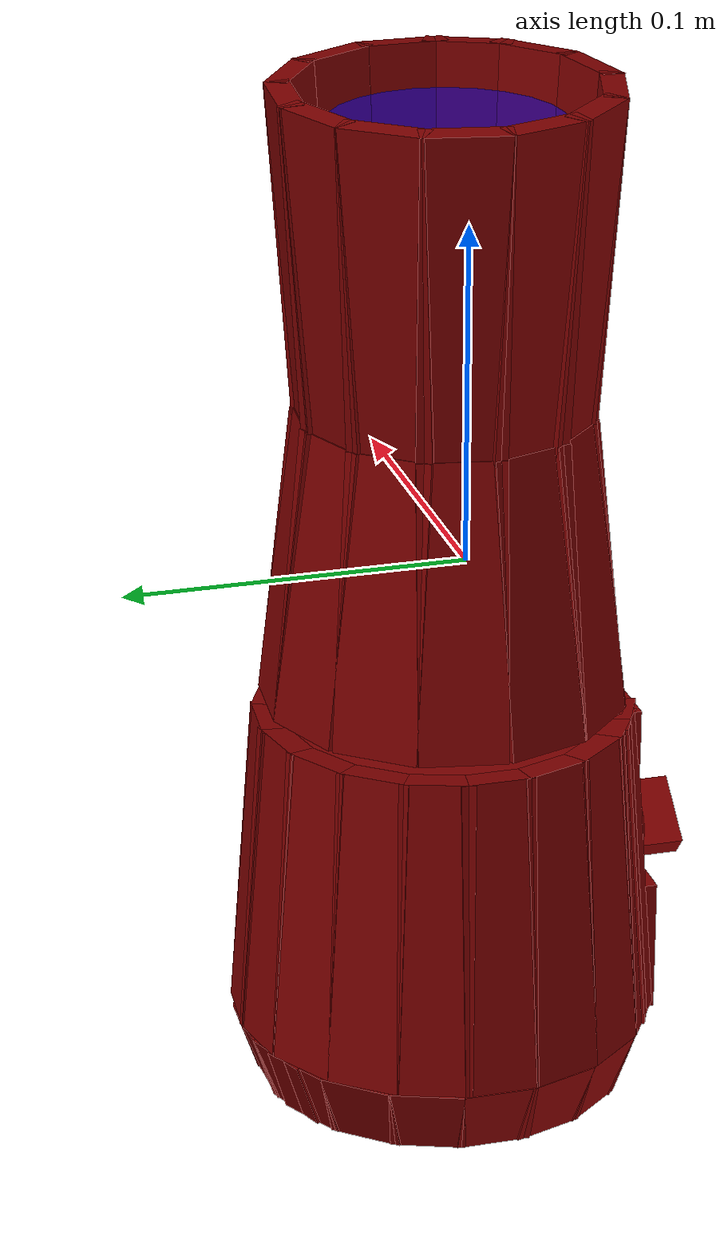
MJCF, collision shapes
<?xml version='1.0' encoding='UTF-8'?>
<mujoco model="model">
  <option timestep="0.002" gravity="0.0 0.0 -9.81"/>
  <compiler angle="radian"/>
  <asset>
    <mesh file="visuals/blade.obj" name="blade_vis"/>
    <mesh file="visuals/Body001.obj" name="Body001_vis"/>
    <mesh file="visuals/knob_speed.obj" name="knob_speed_vis"/>
    <mesh file="visuals/pitcher.obj" name="pitcher_vis"/>
    <mesh file="visuals/pitcher_main.obj" name="pitcher_main_vis"/>
    <mesh file="visuals/power_button.obj" name="power_button_vis"/>
    <texture file="visuals/T_BC001.png" name="Body001_material" type="2d"/>
    <material name="Body001_material" rgba="1 1 1 1.0" texture="Body001_material" shininess="0.4472135901451111" specular="0.3103448502657381"/>
    <texture file="visuals/T_BC001.png" name="knob_speed_material" type="2d"/>
    <material name="knob_speed_material" rgba="1 1 1 1.0" texture="knob_speed_material" shininess="0.4472135901451111" specular="0.3103448502657381"/>
    <texture file="visuals/T_BC001.png" name="pitcher_material" type="2d"/>
    <material name="pitcher_material" rgba="1 1 1 0.800000011920929" texture="pitcher_material" shininess="0.4472135901451111" specular="0.3103448502657381"/>
    <texture file="visuals/T_BC001.png" name="blade_material" type="2d"/>
    <material name="blade_material" rgba="1 1 1 1.0" texture="blade_material" shininess="0.4472135901451111" specular="0.3103448502657381"/>
    <texture file="visuals/T_BC001.png" name="pitcher_main_material" type="2d"/>
    <material name="pitcher_main_material" rgba="1 1 1 1.0" texture="pitcher_main_material" shininess="0.4472135901451111" specular="0.3103448502657381"/>
    <texture file="visuals/T_BC001.png" name="power_button_material" type="2d"/>
    <material name="power_button_material" rgba="1 1 1 1.0" texture="power_button_material" shininess="0.4472135901451111" specular="0.3103448502657381"/>
  </asset>
  <default>
    <default class="visual">
      <geom conaffinity="0" contype="0" group="1" type="mesh"/>
    </default>
    <default class="collision">
      <geom group="0" rgba="0.5 0 0 0.5" density="1.0" solref="0.004 1" solimp="0.998 0.998 0.001"/>
    </default>
    <default class="spawn">
      <geom group="0" rgba="1 1 1 0.5" contype="0" conaffinity="0"/>
      <site group="0" rgba="1 1 1 0.5"/>
    </default>
    <default class="region">
      <geom group="1" conaffinity="0" contype="0" rgba="0 1 0 0" mass="0"/>
    </default>
  </default>
  <worldbody>
    <body>
      <body name="object">
        <geom mesh="Body001_vis" type="mesh" solimp="0.998 0.998 0.001" solref="0.001 1" friction="0.95 0.3 0.1" class="visual" material="Body001_material"/>
        <geom type="cylinder" pos="-0.00000350 0.00646550 -0.10880267" size="0.05027838423848152 0.050639983266592026" quat="1.0 0.0 0.0 0.0" class="collision"/>
        <geom type="box" pos="-0.00043333 -0.04804078 -0.12045336" size="0.02084752358496189 0.00483823474496603 0.020090635865926743" quat="1.0 0.0 0.0 0.0" class="collision"/>
        <geom type="box" pos="-0.00017542 -0.04277979 -0.05224721" size="0.02063511684536934 0.00401512673124671 0.008426142856478691" quat="1.0 0.0 0.0 0.0" class="collision"/>
        <geom type="box" pos="-0.05364602 0.00646552 -0.14757853" size="0.004174570087343454 0.010854005813598633 0.010854005813598633" quat="0.985356867313385 5.595070839132361e-16 -0.17050467431545258 -2.290881262467792e-08" class="collision"/>
        <geom type="box" pos="-0.05405436 0.00646551 -0.09121377" size="0.004025053698569536 0.010854005813598633 0.047436073422431946" quat="0.9993108510971069 3.921987009518433e-16 0.03711973503232002 4.987374513376608e-09" class="collision"/>
        <geom type="box" pos="-0.05030481 0.02510148 -0.14757853" size="0.004174570087343454 0.010854006744921207 0.010854005813598633" quat="0.9698918461799622 -0.03008974716067314 -0.16782867908477783 -0.17389047145843506" class="collision"/>
        <geom type="box" pos="-0.04106523 0.04098297 -0.14757853" size="0.004174570087343454 0.010854005813598633 0.010854004882276058" quat="0.9257819652557373 -0.05838760733604431 -0.16019588708877563 -0.33742547035217285" class="collision"/>
        <geom type="box" pos="-0.02651591 0.05309825 -0.14757853" size="0.004174570087343454 0.010854005813598633 0.010854004882276058" quat="0.8517047762870789 -0.08574175089597702 -0.14737769961357117 -0.4955069422721863" class="collision"/>
        <geom type="box" pos="-0.01005051 -0.04622776 -0.14757853" size="0.004174570087343454 0.010854005813598633 0.010854004882276058" quat="0.7592028379440308 0.1086895614862442 -0.13137130439281464 0.6281235814094543" class="collision"/>
        <geom type="box" pos="-0.02773087 -0.03945523 -0.14757853" size="0.004174570087343454 0.010854005813598633 0.010854004882276058" quat="0.8581354022026062 0.08379990607500076 -0.14849039912223816 0.4842848777770996" class="collision"/>
        <geom type="box" pos="-0.04160080 -0.02740462 -0.14757853" size="0.004174570087343454 0.010854004882276058 0.010854004882276058" quat="0.9283958673477173 0.057131316512823105 -0.1606481820344925 0.33016547560691833" class="collision"/>
        <geom type="box" pos="-0.05077667 -0.01084365 -0.14757853" size="0.004174570087343454 0.010854005813598633 0.010854006744921207" quat="0.9720907211303711 0.027884382754564285 -0.16820929944515228 0.1611451506614685" class="collision"/>
        <geom type="box" pos="0.04984379 -0.01335288 -0.14757853" size="0.004174570087343454 0.010854004882276058 0.010854004882276058" quat="0.18532882630825043 0.16746164858341217 -0.03206900879740715 0.9677713513374329" class="collision"/>
        <geom type="box" pos="0.03985387 -0.02943592 -0.14757853" size="0.004174570087343454 0.010854005813598633 0.010854004882276058" quat="0.35320740938186646 0.15917399525642395 -0.06111845746636391 0.9198764562606812" class="collision"/>
        <geom type="box" pos="0.02540053 -0.04078020 -0.14757853" size="0.004174570087343454 0.010854005813598633 0.010854004882276058" quat="0.5055273175239563 0.14635516703128815 -0.08747565746307373 0.8457956910133362" class="collision"/>
        <geom type="box" pos="0.00740456 -0.04666303 -0.14757853" size="0.004174570087343454 0.010854005813598633 0.010854004882276058" quat="0.646854817867279 0.12862089276313782 -0.1119307428598404 0.7433081865310669" class="collision"/>
        <geom type="box" pos="0.02917042 0.05148109 -0.14757853" size="0.004174570087343454 0.010854004882276058 0.010854005813598633" quat="0.4705747365951538 -0.1498044729232788 -0.08142750710248947 -0.8657295107841492" class="collision"/>
        <geom type="box" pos="0.04299215 0.03854189 -0.14757853" size="0.004174570087343454 0.010854006744921207 0.010854005813598633" quat="0.3104095458984375 -0.16182319819927216 -0.05371277779340744 -0.9351866841316223" class="collision"/>
        <geom type="box" pos="0.05129452 0.02215097 -0.14757853" size="0.004174570087343454 0.010854005813598633 0.010854004882276058" quat="0.1456633359193802 -0.16863130033016205 -0.02520536445081234 -0.9745308756828308" class="collision"/>
        <geom type="box" pos="0.05354862 0.00335250 -0.14757853" size="0.004174570087343454 0.010854005813598633 0.010854006744921207" quat="0.028603164479136467 0.17043240368366241 -0.004949431866407394 0.9849417209625244" class="collision"/>
        <geom type="box" pos="-0.01982993 0.05630959 -0.14757853" size="0.004174570087343454 0.010854005813598633 0.010854004882276058" quat="0.8154098391532898 -0.09572560340166092 -0.14109724760055542 -0.5532042980194092" class="collision"/>
        <geom type="box" pos="-0.00184653 0.06007635 -0.14757853" size="0.004174570087343454 0.010854004882276058 0.010854004882276058" quat="0.7086209058761597 -0.11847569048404694 -0.1226186603307724 -0.6846784949302673" class="collision"/>
        <geom type="box" pos="0.01689322 0.05737740 -0.14757853" size="0.004174570087343454 0.010854005813598633 0.010854005813598633" quat="0.5766705870628357 -0.13825532793998718 -0.0997861847281456 -0.7989863753318787" class="collision"/>
        <geom type="box" pos="-0.02775627 -0.03991638 -0.09121376" size="0.004025053698569536 0.010854003950953484 0.04743606224656105" quat="0.8693017959594727 -0.018308410421013832 0.0322905033826828 0.49288591742515564" class="collision"/>
        <geom type="box" pos="-0.04164471 -0.02799469 -0.09121377" size="0.004025053698569536 0.010854006744921207 0.047436073422431946" quat="0.9402043223381042 -0.012576751410961151 0.034924205392599106 0.33858224749565125" class="collision"/>
        <geom type="box" pos="-0.05095529 -0.01157364 -0.09121377" size="0.004025053698569536 0.010854006744921207 0.047436073422431946" quat="0.9848824739456177 -0.006284964736551046 0.036583706736564636 0.16919994354248047" class="collision"/>
        <geom type="box" pos="-0.01197282 0.05917443 -0.09121377" size="0.004025053698569536 0.010854005813598633 0.047436073422431946" quat="0.7809489965438843 0.023159775882959366 0.029008612036705017 -0.6234908103942871" class="collision"/>
        <geom type="box" pos="-0.05137957 0.02325818 -0.09121377" size="0.004025053698569536 0.010854004882276058 0.047436077147722244" quat="0.9868703484535217 0.005838928744196892 0.036657728254795074 -0.1571912169456482" class="collision"/>
        <geom type="box" pos="-0.04282941 0.03944181 -0.09121377" size="0.004025053698569536 0.010854005813598633 0.047436073422431946" quat="0.9460065364837646 0.011961393058300018 0.035139743238687515 -0.3220151960849762" class="collision"/>
        <geom type="box" pos="-0.02887783 0.05215760 -0.09121377" size="0.004025053698569536 0.010854005813598633 0.047436073422431946" quat="0.8752408027648926 0.01791374571621418 0.032511115074157715 -0.48226097226142883" class="collision"/>
        <geom type="box" pos="0.03789883 0.04500001 -0.09121377" size="0.004025053698569536 0.010854004882276058 0.047436073422431946" quat="0.3862343728542328 0.034235093742609024 0.014346794225275517 -0.9216535091400146" class="collision"/>
        <geom type="box" pos="0.00462902 0.06031748 -0.09121377" size="0.004025053698569536 0.010854005813598633 0.047436073422431946" quat="0.6756603717803955 0.027349231764674187 0.025097547098994255 -0.7362779378890991" class="collision"/>
        <geom type="box" pos="0.02286499 0.05544026 -0.09121377" size="0.004025053698569536 0.010854004882276058 0.047436073422431946" quat="0.5367090106010437 0.031311675906181335 0.019936243072152138 -0.8429505228996277" class="collision"/>
        <geom type="box" pos="0.04596761 -0.02196252 -0.09121377" size="0.004025053698569536 0.010854005813598633 0.047436073422431946" quat="0.2732015550136566 -0.03570559248328209 0.010148162953555584 0.9612403512001038" class="collision"/>
        <geom type="box" pos="0.04799519 0.03131748 -0.09121377" size="0.004025053698569536 0.010854005813598633 0.047436073422431946" quat="0.23645034432411194 0.03606566786766052 0.008783024735748768 -0.970934271812439" class="collision"/>
        <geom type="box" pos="0.05353733 0.01387329 -0.09121376" size="0.004025053698569536 0.010854005813598633 0.04743606969714165" quat="0.06864112615585327 0.037031952291727066 0.0025496904272586107 -0.996950626373291" class="collision"/>
        <geom type="box" pos="0.05281948 -0.00498998 -0.09121377" size="0.004025053698569536 0.010854004882276058 0.047436073422431946" quat="0.10650292783975601 -0.03690831735730171 0.003956086467951536 0.9936192631721497" class="collision"/>
        <geom type="box" pos="0.03453228 -0.03511304 -0.09121377" size="0.004025053698569536 0.010854005813598633 0.047436073422431946" quat="0.4245893955230713 -0.033602576702833176 0.01577151007950306 0.9046247601509094" class="collision"/>
        <geom type="box" pos="0.02250941 -0.04267372 -0.09121375" size="0.004025053698569536 0.010854005813598633 0.04743606597185135" quat="0.5397603511810303 -0.031239204108715057 0.0200495645403862 0.840999960899353" class="collision"/>
        <geom type="box" pos="-0.02198797 -0.04291240 -0.09121375" size="0.004025051835924387 0.010854003950953484 0.047436054795980453" quat="0.838092565536499 -0.020216846838593483 0.031131189316511154 0.5442637205123901" class="collision"/>
        <body name="power_button">
          <joint axis="0.0 1.0 0.0" pos="-0.00003876 -0.04566293 -0.06626846" limited="true" name="power_button_joint" range="0.0 0.002" type="slide" damping="1" frictionloss="1" armature=".01" stiffness="0.5" springref="-0.5"/>
          <geom mesh="power_button_vis" type="mesh" solimp="0.998 0.998 0.001" solref="0.001 1" friction="0.95 0.3 0.1" class="visual" material="power_button_material"/>
          <geom class="collision" type="box" pos="-0.00023299 -0.04643640 -0.06612332" size="0.00738384947180748 0.0018029806669801474 0.003648989135399461" quat="1.0 0.0 0.0 0.0" name="power_button_main"/>
        </body>
        <body name="pitcher">
          <geom mesh="pitcher_vis" type="mesh" solimp="0.998 0.998 0.001" solref="0.001 1" friction="0.95 0.3 0.1" class="visual" material="pitcher_material"/>
          <geom type="box" pos="0.04333248 0.00646550 0.00355366" size="0.0035044727846980095 0.012674807570874691 0.04332708194851875" quat="0.9983056783676147 2.1190591700792887e-15 -0.05818738788366318 -7.81798892290908e-09" class="collision"/>
          <geom type="box" pos="0.04132131 0.00646551 0.09231527" size="0.0035068036522716284 0.012674807570874691 0.048212192952632904" quat="0.9992659687995911 2.45362172589345e-15 0.03830776736140251 5.146997050786695e-09" class="collision"/>
          <geom type="box" pos="0.03796790 0.02735042 0.00355366" size="0.003504473017528653 0.012674807570874691 0.04332708567380905" quat="0.9669170379638672 0.014476297423243523 -0.05635787919163704 0.24836596846580505" class="collision"/>
          <geom type="box" pos="0.03620569 0.02638118 0.09231527" size="0.003506803885102272 0.012674806639552116 0.0482121966779232" quat="0.9678471684455872 -0.009530461393296719 0.03710317239165306 0.248604878783226" class="collision"/>
          <geom type="box" pos="0.02369902 0.04274494 0.00355366" size="0.003504473017528653 0.012674807570874691 0.04332708194851875" quat="0.8779835104942322 0.02769414521753788 -0.05117426812648773 0.4751411974430084" class="collision"/>
          <geom type="box" pos="0.02259900 0.04106126 0.09231527" size="0.003506803885102272 0.012674807570874691 0.0482121966779232" quat="0.8788281083106995 -0.018232425674796104 0.03369055688381195 0.47559821605682373" class="collision"/>
          <geom type="box" pos="0.00328072 0.04967685 0.00355366" size="0.003504473017528653 0.012674807570874691 0.04332708194851875" quat="0.732168972492218 0.0395549014210701 -0.04267530143260956 0.6786330938339233" class="collision"/>
          <geom type="box" pos="0.00312829 0.04767146 0.09231527" size="0.003506803885102272 0.012674807570874691 0.0482121966779232" quat="0.7328732013702393 -0.02604093588888645 0.028095250949263573 0.6792859435081482" class="collision"/>
          <geom type="box" pos="-0.01692824 0.04635987 0.00355366" size="0.003504473017528653 0.012674807570874691 0.04332708194851875" quat="0.5510849952697754 0.048518408089876175 -0.032120585441589355 0.832417905330658" class="collision"/>
          <geom type="box" pos="-0.01614279 0.04450841 0.09231527" size="0.0035068036522716284 0.012674807570874691 0.0482121966779232" quat="0.5516152381896973 -0.03194207698106766 0.02114659734070301 0.8332185745239258" class="collision"/>
          <geom type="box" pos="-0.03405942 0.03326479 0.00355366" size="0.003504473017528653 0.012674807570874691 0.04332708194851875" quat="0.3266628086566925 0.054984088987112045 -0.019039904698729515 0.9433481097221375" class="collision"/>
          <geom type="box" pos="-0.03247893 0.03202105 0.09231527" size="0.003506803885102272 0.012674807570874691 0.0482121966779232" quat="0.3269769251346588 -0.03619876131415367 0.012534912675619125 0.9442555904388428" class="collision"/>
          <geom type="box" pos="-0.04265868 0.01411681 0.00355366" size="0.003504473017528653 0.012674807570874691 0.04332708939909935" quat="0.08847763389348984 0.057958297431468964 -0.005157011561095715 0.9943771958351135" class="collision"/>
          <geom type="box" pos="-0.04067911 0.01376172 0.09231527" size="0.0035068041179329157 0.012674807570874691 0.048212192952632904" quat="0.0885627493262291 -0.038156673312187195 0.003395108273252845 0.995333731174469" class="collision"/>
          <geom type="box" pos="-0.04106578 -0.00738717 0.00355365" size="0.003504473017528653 0.012674807570874691 0.04332708194851875" quat="0.16169296205043793 -0.057419054210186005 -0.009424450807273388 -0.9851241707801819" class="collision"/>
          <geom type="box" pos="-0.03916012 -0.00674430 0.09231527" size="0.0035068041179329157 0.012674807570874691 0.0482121966779232" quat="0.1618485003709793 0.037801697850227356 0.006204571109265089 -0.9860718250274658" class="collision"/>
          <geom type="box" pos="-0.03033342 -0.02448774 0.00355365" size="0.003504473017528653 0.012674807570874691 0.04332708194851875" quat="0.3867202699184418 -0.053644176572561264 -0.022540420293807983 -0.9203595519065857" class="collision"/>
          <geom type="box" pos="-0.02892584 -0.02305124 0.09231527" size="0.0035068041179329157 0.012674807570874691 0.0482121966779232" quat="0.38709238171577454 0.03531663864850998 0.014839478768408298 -0.9212448000907898" class="collision"/>
          <geom type="box" pos="-0.01166157 -0.03527293 0.00355365" size="0.0035044727846980095 0.012674808502197266 0.04332708194851875" quat="0.6035350561141968 -0.04634973034262657 -0.035177696496248245 -0.7952104806900024" class="collision"/>
          <geom type="box" pos="-0.01112052 -0.03333590 0.09231527" size="0.0035068036522716284 0.012674807570874691 0.0482121966779232" quat="0.6041155457496643 0.03051433339715004 0.023159237578511238 -0.7959754467010498" class="collision"/>
          <geom type="box" pos="0.00932065 -0.03585550 0.00355366" size="0.003504473017528653 0.012674807570874691 0.04332708194851875" quat="0.7781533598899841 -0.0364505834877491 -0.04535554721951485 -0.6253731846809387" class="collision"/>
          <geom type="box" pos="0.00888793 -0.03389143 0.09231527" size="0.0035068041179329157 0.012674807570874691 0.0482121966779232" quat="0.7789018750190735 0.023997221142053604 0.029859796166419983 -0.6259747743606567" class="collision"/>
          <geom type="box" pos="0.02856218 -0.02612298 0.00355365" size="0.0035044727846980095 0.012674806639552116 0.04332708194851875" quat="0.9092717170715332 -0.024020615965127945 -0.052997905761003494 -0.41211551427841187" class="collision"/>
          <geom type="box" pos="0.02723648 -0.02461058 0.09231527" size="0.003506803885102272 0.012674806639552116 0.0482121966779232" quat="0.9101463556289673 0.01581396348774433 0.03489115461707115 -0.41251200437545776" class="collision"/>
          <geom type="box" pos="0.03958975 -0.01115216 0.00355366" size="0.003504473017528653 0.012674807570874691 0.04332708194851875" quat="0.9765130281448364 -0.012091603130102158 -0.05691717192530632 -0.20745247602462769" class="collision"/>
          <geom type="box" pos="0.03775227 -0.01033453 0.09231527" size="0.0035068041179329157 0.012674807570874691 0.0482121966779232" quat="0.9774523973464966 0.007960498332977295 0.03747131675481796 -0.2076520472764969" class="collision"/>
          <body name="blade">
            <geom mesh="blade_vis" type="mesh" solimp="0.998 0.998 0.001" solref="0.001 1" friction="0.95 0.3 0.1" class="visual" material="blade_material"/>
            <geom type="cylinder" pos="-0.00000350 0.00646550 -0.03204990" size="0.031703922897577286 0.011009951122105122" quat="1.0 0.0 0.0 0.0" class="collision"/>
          </body>
          <body name="pitcher_main">
            <geom class="region" type="cylinder" size="0.03383820876479149 0.07321330904960632" pos="-0.00013724 0.00655650 0.05660385" rgba="0 0 1 0.5" name="reg_int"/>
            <geom mesh="pitcher_main_vis" type="mesh" solimp="0.998 0.998 0.001" solref="0.001 1" friction="0.95 0.3 0.1" class="visual" material="pitcher_main_material"/>
            <geom type="cylinder" pos="-0.00000350 0.00646550 -0.05209770" size="0.044104933738708496 0.004458223003894091" quat="1.0 0.0 0.0 0.0" class="collision"/>
          </body>
        </body>
        <body name="knob_speed">
          <joint axis="0.0 1.0 0.0" pos="-0.00001943 -0.05512573 -0.08862664" limited="true" name="knob_speed_joint" range="0.0 4.71238898038469" type="hinge" damping="0.05" frictionloss="0.1" armature="0.001"/>
          <geom mesh="knob_speed_vis" type="mesh" solimp="0.998 0.998 0.001" solref="0.001 1" friction="0.95 0.3 0.1" class="visual" material="knob_speed_material"/>
          <geom type="cylinder" pos="-0.00005389 -0.04848021 -0.08866108" size="0.010512183420360088 0.0038811657577753067" quat="0.7071067094802856 0.7071068286895752 0.0 0.0" class="collision" density="0.001"/>
          <geom class="collision" type="box" pos="-0.00020290 -0.05809158 -0.08858658" size="0.003975735977292061 0.006238631904125214 0.010526491329073906" quat="0.9099612236022949 0.0 0.41469329595565796 0.0" name="knob_speed_main" density="0.001"/>
        </body>
        <geom class="region" name="reg_main" type="box" pos="2.1500000000132524e-07 0.005763934999999998 2.500000000071889e-08" size="0.058867235000000004 0.059565095 0.16028904500000002"/>
      </body>
      <site rgba="0 1 0 0" size="0.005" pos="-1.09494422e-04 6.57808673e-03 1.41758517e-01" name="anchor_site"/>
    </body>
  </worldbody>
  <actuator>
    <motor name="knob_speed_joint_actuator" joint="knob_speed_joint" gear="10"/>
    <motor name="power_button_joint_actuator" joint="power_button_joint" gear="0.5"/>
  </actuator>
</mujoco>
